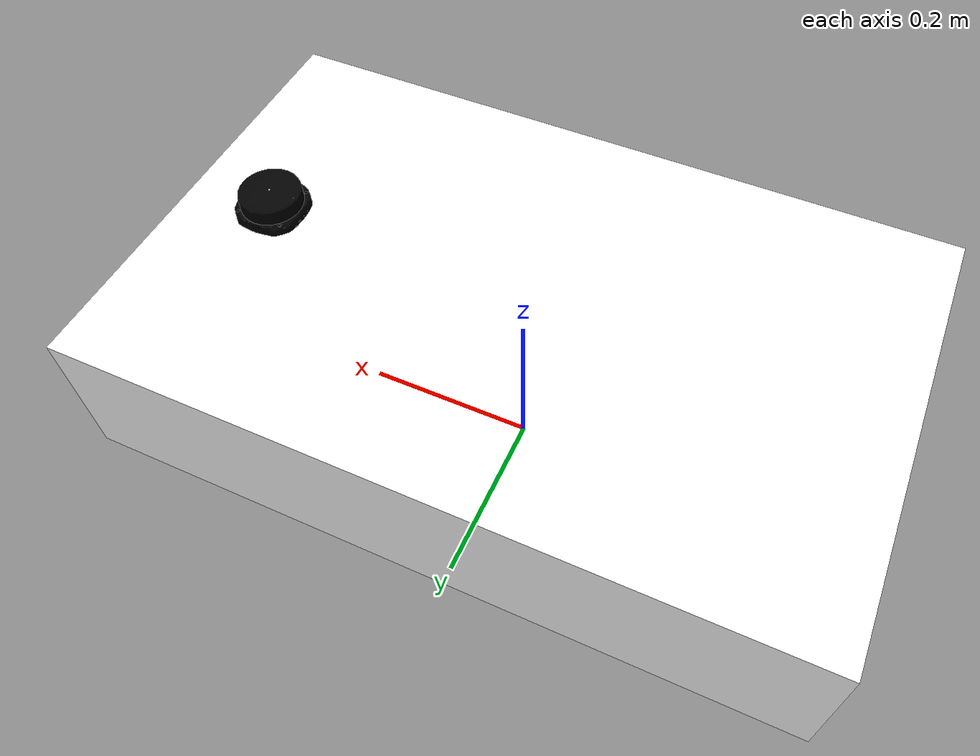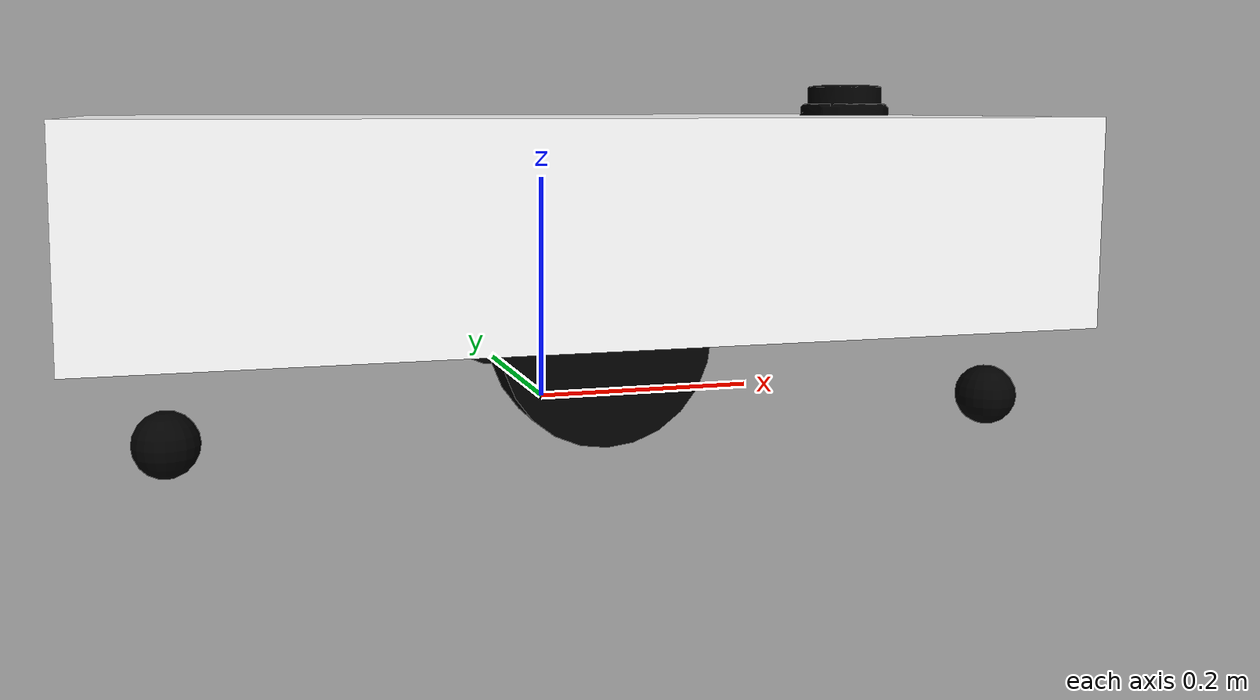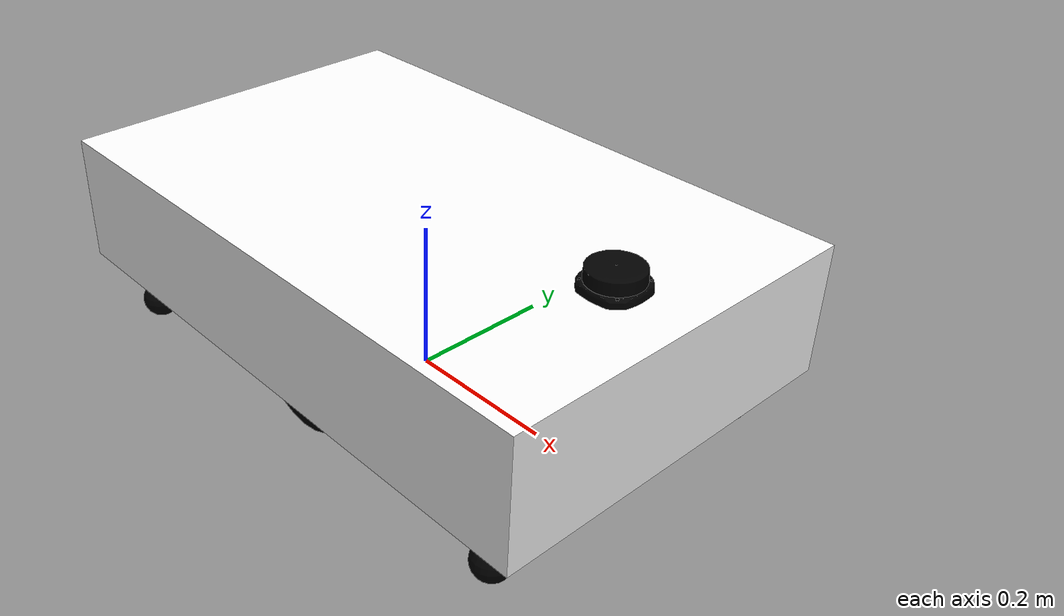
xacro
<?xml version="1.0"?>
<robot xmlns:xacro="http://www.ros.org/wiki/xacro" name="robot">

    <xacro:arg name="use_mock_hardware" default="false" />
    <xacro:arg name="use_gz_sim" default="false" />
    <xacro:arg name="serial_port" default="/dev/ttyLP2" />

    <xacro:include filename="robot_core.xacro" />
    <xacro:include filename="diffbot.ros2_control.xacro" />
    <xacro:include filename="lidar.xacro" />
    <xacro:include filename="gazebo_control.xacro" />

    <xacro:diffbot_ros2_control
        name="MyBot"
        prefix=""
        use_mock_hardware="$(arg use_mock_hardware)"
        use_gz_sim="$(arg use_gz_sim)"
        serial_port="$(arg serial_port)"/>

</robot>

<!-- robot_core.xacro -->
<robot name="my_bot" xmlns:xacro="http://www.ros.org/wiki/xacro">

    <xacro:include filename="inertial_macros.xacro" />

    <!-- ===== dims (m) ===== -->
    <xacro:property name="chassis_length" value="0.797"/>
    <xacro:property name="chassis_width"  value="0.498"/>
    <xacro:property name="chassis_height" value="0.170"/>
    <xacro:property name="chassis_mass"   value="10.0"/>

    <xacro:property name="wheel_radius" value="0.085"/>
    <xacro:property name="wheel_width"  value="0.045"/>
    <xacro:property name="wheel_mass"   value="1.0"/>
    <xacro:property name="wheel_y_off"  value="0.175"/> <!-- drive wheel Y from base (half of 0.35m separation) -->

    <xacro:property name="caster_radius" value="0.0245"/> <!-- match wheel r, keep chassis level -->
    <xacro:property name="caster_mass"   value="0.2"/>
    <xacro:property name="caster_x_off"  value="0.330"/>
    <xacro:property name="caster_y_off"  value="0.200"/>

    <material name="white">  <color rgba="1 1 1 1"/>      </material>
    <material name="blue">   <color rgba="0.2 0.2 1 1"/> </material>
    <material name="black">  <color rgba="0 0 0 1"/>      </material>
    <material name="red">    <color rgba="1 0 0 1"/>      </material>
    <material name="green">  <color rgba="0 1 0 1"/>      </material>
    <material name="yellow"> <color rgba="1 1 0 1"/>      </material>
    <material name="orange"> <color rgba="1 0.5 0 1"/>   </material>
    <material name="grey">   <color rgba="0.5 0.5 0.5 1"/></material>
    <material name="light_blue"> <color rgba="0.6 0.8 1.0 1.0"/> </material>
    <material name="light_grey"><color rgba="0.7 0.7 0.7 1.0"/></material>

    <!-- ========================= base ========================= -->
    <link name="base_link"></link>

    <!-- ========================= chassis ========================= -->
    <joint name="chassis_joint" type="fixed">
        <parent link="base_link"/>
        <child link="chassis"/>
        <origin xyz="0 0 ${wheel_radius}" rpy="0 0 0"/>
    </joint>

    <link name="chassis">
        <visual>
            <origin xyz="0 0 ${chassis_height/2}" rpy="0 0 0"/>
            <geometry>
                <box size="${chassis_length} ${chassis_width} ${chassis_height}"/>
            </geometry>
            <material name="white"/>
        </visual>
        <collision>
            <origin xyz="0 0 ${chassis_height/2}" rpy="0 0 0"/>
            <geometry><box size="${chassis_length} ${chassis_width} ${chassis_height}"/></geometry>
        </collision>
        <xacro:inertial_box mass="${chassis_mass}" x="${chassis_length}" y="${chassis_width}" z="${chassis_height}">
            <origin xyz="0 0 ${chassis_height/2}" rpy="0 0 0"/>
        </xacro:inertial_box>
    </link>

    <gazebo reference="chassis">
        <material>Gazebo/Red</material>
    </gazebo>

    <!-- ========================= drive wheel macro ========================= -->
    <xacro:macro name="drive_wheel" params="prefix y_reflect">
        <joint name="${prefix}_wheel_joint" type="continuous">
            <parent link="base_link"/>
            <child link="${prefix}_wheel"/>
            <origin xyz="0 ${y_reflect * wheel_y_off} ${wheel_radius}" rpy="${-pi/2} 0 0"/>
            <axis xyz="0 0 1"/>
        </joint>

        <link name="${prefix}_wheel">
            <visual>
                <geometry><cylinder radius="${wheel_radius}" length="${wheel_width}"/></geometry>
                <material name="black"/>
            </visual>
            <collision>
                <geometry><cylinder radius="${wheel_radius}" length="${wheel_width}"/></geometry>
            </collision>
            <xacro:inertial_cylinder mass="${wheel_mass}" radius="${wheel_radius}" length="${wheel_width}">
                <origin xyz="0 0 0" rpy="0 0 0"/>
            </xacro:inertial_cylinder>
        </link>

        <gazebo reference="${prefix}_wheel">
            <material>Gazebo/Black</material>
        </gazebo>
    </xacro:macro>

    <xacro:drive_wheel prefix="left"  y_reflect="1"/>
    <xacro:drive_wheel prefix="right" y_reflect="-1"/>

    <!-- ========================= caster wheel macro ========================= -->
    <xacro:macro name="caster_wheel" params="prefix x_pos y_pos">
        <joint name="${prefix}_caster_joint" type="fixed">
            <parent link="base_link"/>
            <child link="${prefix}_caster"/>
            <origin xyz="${x_pos} ${y_pos} ${caster_radius}" rpy="0 0 0"/>
        </joint>

        <link name="${prefix}_caster">
            <visual>
                <geometry><sphere radius="${caster_radius}"/></geometry>
                <material name="black"/>
            </visual>
            <collision>
                <geometry><sphere radius="${caster_radius}"/></geometry>
            </collision>
            <xacro:inertial_sphere mass="${caster_mass}" radius="${caster_radius}">
                <origin xyz="0 0 0" rpy="0 0 0"/>
            </xacro:inertial_sphere>
        </link>

        <gazebo reference="${prefix}_caster">
            <material>Gazebo/Black</material>
            <mu1>0.0</mu1>
            <mu2>0.0</mu2>
        </gazebo>
    </xacro:macro>

    <xacro:caster_wheel prefix="front_left"  x_pos="${caster_x_off}"  y_pos="${caster_y_off}"/>
    <xacro:caster_wheel prefix="front_right" x_pos="${caster_x_off}"  y_pos="${-caster_y_off}"/>
    <xacro:caster_wheel prefix="rear_left"   x_pos="${-caster_x_off}" y_pos="${caster_y_off}"/>
    <xacro:caster_wheel prefix="rear_right"  x_pos="${-caster_x_off}" y_pos="${-caster_y_off}"/>

    <!-- ========================= imu ========================= -->
    <link name="imu_link"/>

    <joint name="imu_joint" type="fixed">
        <parent link="base_link"/>
        <child link="imu_link"/>
        <origin xyz="0 0 0" rpy="0 0 0"/>
    </joint>

</robot>

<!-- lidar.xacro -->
<robot name="my_bot" xmlns:xacro="http://www.ros.org/wiki/xacro">

    <joint name="laser_joint" type="fixed">
    <parent link="chassis"/>  <child link="laser_frame"/>
    <origin xyz="0.300 0 0.180" rpy="0 0 3.14159"/>
    </joint>

    <link name="laser_frame">
        <visual>
            <geometry>
                <mesh filename="package://calixto-ros-bot/description/meshes/ROS2-Chasis-lidar-black.stl" scale="0.001 0.001 0.001"/>
            </geometry>
            <material name="black"/>
        </visual>
        <collision>
            <geometry>
                <cylinder radius="0.05" length="0.04"/>
            </geometry>
        </collision>
        <xacro:inertial_cylinder mass="0.1" length="0.04" radius="0.05">
            <origin xyz="0 0 0" rpy="0 0 0"/>
        </xacro:inertial_cylinder>
    </link>

<gazebo reference="laser_frame">
        <material>Gazebo/Black</material>

        <sensor name="laser" type="ray">
            <pose> 0 0 0 0 0 0 </pose>
            <visualize>true</visualize>
            <update_rate>10</update_rate>
            <ray>
                <scan>
                    <horizontal>
                        <samples>360</samples>
                        <min_angle>-3.14</min_angle>
                        <max_angle>3.14</max_angle>
                    </horizontal>
                </scan>
                <range>
                    <min>0.3</min>
                    <max>12</max>
                    <resolution>0.01</resolution>
                </range>
            </ray>
            <plugin name="laser_controller" filename="libgazebo_ros_ray_sensor.so">
                <ros>
                    <argument>~/out:=scan</argument>
                </ros>
                <output_type>sensor_msgs/LaserScan</output_type>
                <frame_name>laser_frame</frame_name>
            </plugin>
        </sensor>
    </gazebo>

</robot>
